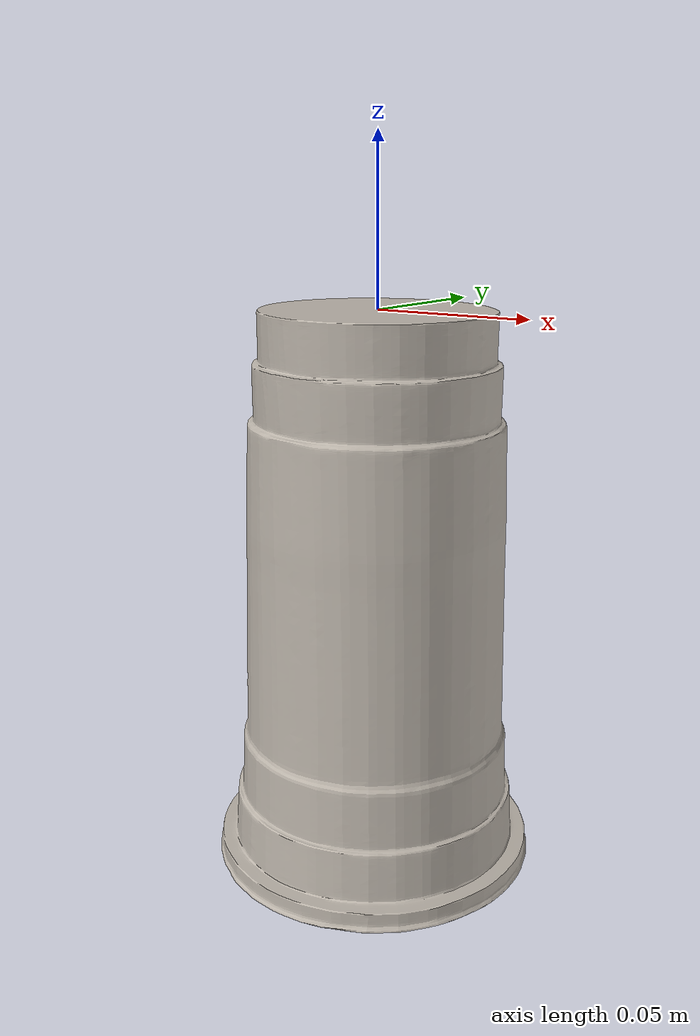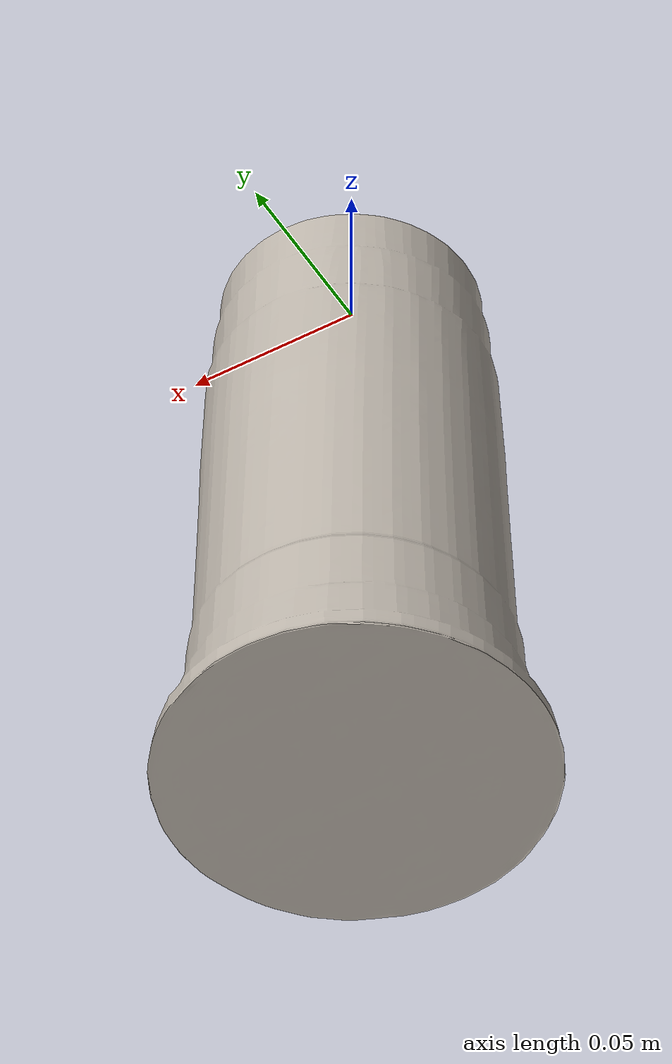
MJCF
<mujoco model="101_milk-tea">
  <asset>
    <mesh name="101_milk_tea_visual" file="101_milk-tea_visual.obj"/>
    <mesh name="101_milk_tea_collision" file="101_milk-tea_collision.stl"/>
    <texture name="101_milk_tea_tex" type="2d" file="101_milk-tea.png"/>
    <material name="101_milk_tea_mat" texture="101_milk_tea_tex"/>
  </asset>
  <worldbody>
    <body name="101_milk-tea" pos="0 0 0">
      <freejoint/>
      <geom type="mesh" mesh="101_milk_tea_visual" material="101_milk_tea_mat"
            mass="0.4837" contype="0" conaffinity="0"/>
      <geom type="mesh" mesh="101_milk_tea_collision" mass="0"
            contype="1" conaffinity="1"
            friction="0.5 .005 0.01"
            rgba="0 0 0 0"/>
    </body>
  </worldbody>
</mujoco>
